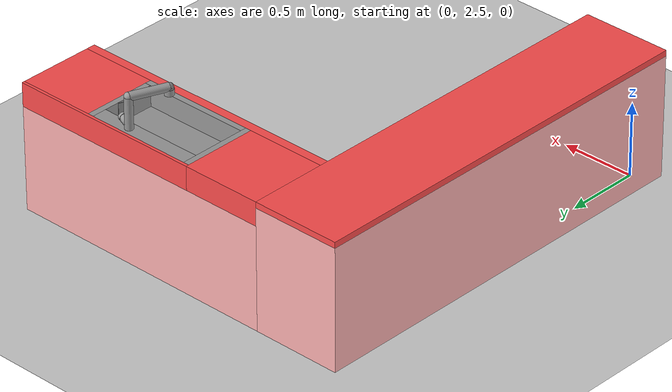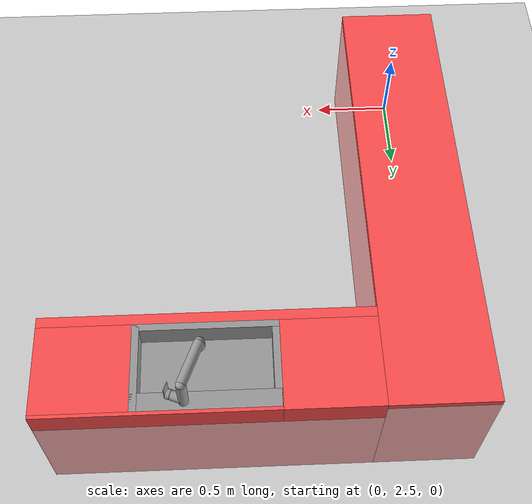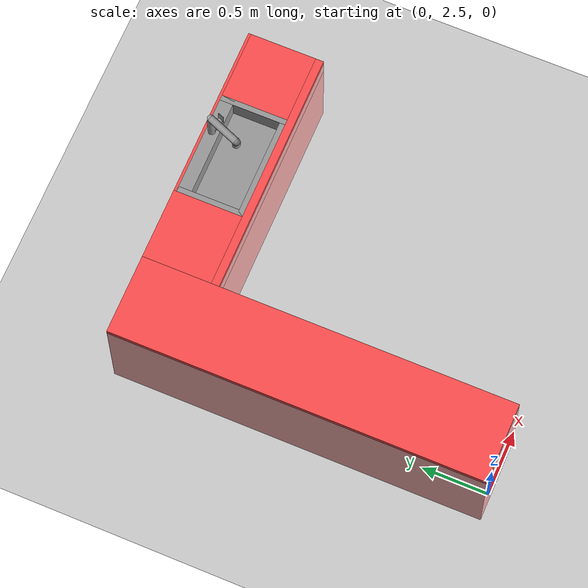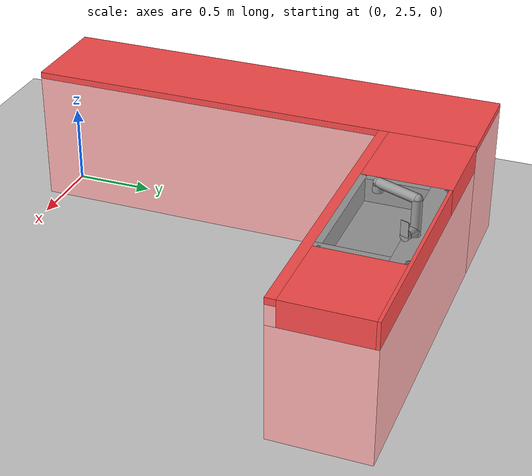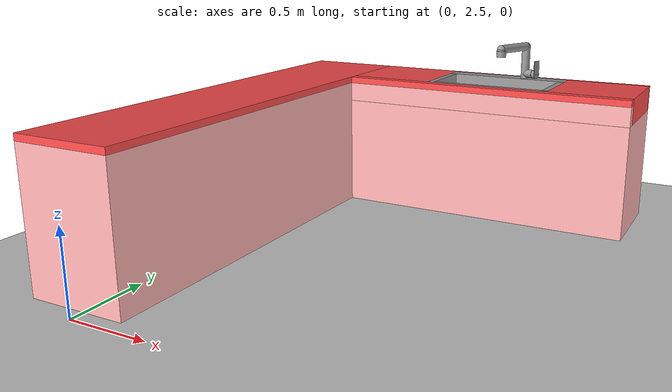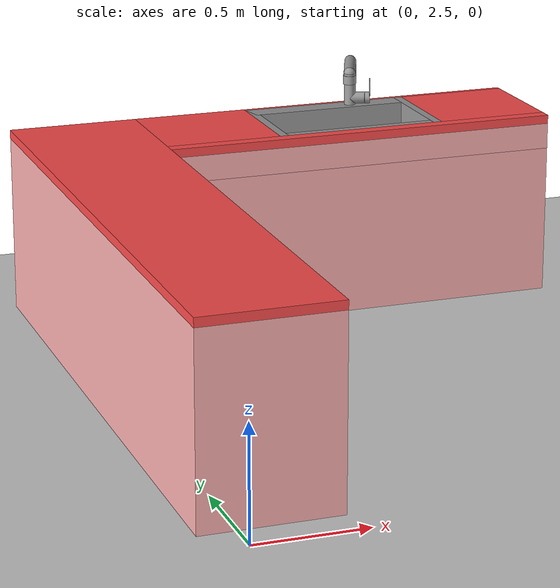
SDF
<sdf version="1.6">
 <world name="default">
  <model name="ground_plane">
   <static>1</static>
   <link name="link">
    <collision name="collision">
     <geometry><plane><normal>0 0 1</normal><size>100 100</size></plane></geometry>
     <surface><friction><ode><mu>100</mu><mu2>50</mu2></ode></friction></surface>
    </collision>
    <visual name="visual">
     <cast_shadows>0</cast_shadows>
     <geometry><plane><normal>0 0 1</normal><size>100 100</size></plane></geometry>
     <material>
      <script><uri>file://media/materials/scripts/gazebo.material</uri><name>Gazebo/Grey</name></script>
     </material>
    </visual>
   </link>
  </model>
  <model name="thesink_h_0">
   <link name="link_0_clone">
    <pose>-1.8174 7.06437 0.5 0 -0 0</pose>
    <visual name="visual">
     <geometry><box><size>1.86 0.58 0.7</size></box></geometry>
     <material>
      <lighting>1</lighting>
      <script><uri>file://media/materials/scripts/gazebo.material</uri><name>Gazebo/Grey</name></script>
      <ambient>0.3 0.3 0.3 1</ambient>
      <diffuse>1 0.7 0.7 1</diffuse>
      <specular>0.01 0.01 0.01 1</specular>
      <emissive>0 0 0 1</emissive>
      <shader type="vertex"><normal_map>__default__</normal_map></shader>
     </material>
    </visual>
    <collision name="collision">
     <geometry><box><size>1.86 0.58 0.7</size></box></geometry>
     <surface>
      <friction>
       <ode><mu>1</mu><mu2>1</mu2><fdir1>0 0 0</fdir1><slip1>0</slip1><slip2>0</slip2></ode>
       <torsional>
        <coefficient>1</coefficient>
        <patch_radius>0</patch_radius>
        <surface_radius>0</surface_radius>
        <use_patch_radius>1</use_patch_radius>
        <ode><slip>0</slip></ode>
       </torsional>
      </friction>
      <bounce><restitution_coefficient>0</restitution_coefficient><threshold>1e+06</threshold></bounce>
      <contact>
       <collide_without_contact>0</collide_without_contact>
       <collide_without_contact_bitmask>1</collide_without_contact_bitmask>
       <collide_bitmask>1</collide_bitmask>
       <ode>
        <soft_cfm>0</soft_cfm>
        <soft_erp>0.2</soft_erp>
        <kp>1e+13</kp>
        <kd>1</kd>
        <max_vel>0.01</max_vel>
        <min_depth>0</min_depth>
       </ode>
       <bullet>
        <split_impulse>1</split_impulse>
        <split_impulse_penetration_threshold>-0.01</split_impulse_penetration_threshold>
        <soft_cfm>0</soft_cfm>
        <soft_erp>0.2</soft_erp>
        <kp>1e+13</kp>
        <kd>1</kd>
       </bullet>
      </contact>
     </surface>
    </collision>
    <inertial>
     <inertia><ixx>1</ixx><ixy>0</ixy><ixz>0</ixz><iyy>1</iyy><iyz>0</iyz><izz>1</izz></inertia>
     <mass>1</mass>
    </inertial>
   </link>
   <link name="link_0_clone_clone">
    <pose>-1.8174 6.80437 0.91 0 -0 0</pose>
    <visual name="visual">
     <geometry><box><size>1.86 0.06 0.12</size></box></geometry>
     <material>
      <lighting>1</lighting>
      <script><uri>file://media/materials/scripts/gazebo.material</uri><name>Gazebo/Grey</name></script>
      <ambient>0.3 0.3 0.3 1</ambient>
      <diffuse>1 0.7 0.7 1</diffuse>
      <specular>0.01 0.01 0.01 1</specular>
      <emissive>0 0 0 1</emissive>
      <shader type="vertex"><normal_map>__default__</normal_map></shader>
     </material>
    </visual>
    <collision name="collision">
     <geometry><box><size>1.86 0.06 0.12</size></box></geometry>
     <surface>
      <friction>
       <ode><mu>1</mu><mu2>1</mu2><fdir1>0 0 0</fdir1><slip1>0</slip1><slip2>0</slip2></ode>
       <torsional>
        <coefficient>1</coefficient>
        <patch_radius>0</patch_radius>
        <surface_radius>0</surface_radius>
        <use_patch_radius>1</use_patch_radius>
        <ode><slip>0</slip></ode>
       </torsional>
      </friction>
      <bounce><restitution_coefficient>0</restitution_coefficient><threshold>1e+06</threshold></bounce>
      <contact>
       <collide_without_contact>0</collide_without_contact>
       <collide_without_contact_bitmask>1</collide_without_contact_bitmask>
       <collide_bitmask>1</collide_bitmask>
       <ode>
        <soft_cfm>0</soft_cfm>
        <soft_erp>0.2</soft_erp>
        <kp>1e+13</kp>
        <kd>1</kd>
        <max_vel>0.01</max_vel>
        <min_depth>0</min_depth>
       </ode>
       <bullet>
        <split_impulse>1</split_impulse>
        <split_impulse_penetration_threshold>-0.01</split_impulse_penetration_threshold>
        <soft_cfm>0</soft_cfm>
        <soft_erp>0.2</soft_erp>
        <kp>1e+13</kp>
        <kd>1</kd>
       </bullet>
      </contact>
     </surface>
    </collision>
    <inertial>
     <inertia><ixx>1</ixx><ixy>0</ixy><ixz>0</ixz><iyy>1</iyy><iyz>0</iyz><izz>1</izz></inertia>
     <mass>1</mass>
    </inertial>
   </link>
   <link name="link_0_clone_clone_0">
    <pose>-3.0474 5.95437 0.56 0 -0 0</pose>
    <visual name="visual">
     <geometry><box><size>0.6 2.8 0.82</size></box></geometry>
     <material>
      <lighting>1</lighting>
      <script><uri>file://media/materials/scripts/gazebo.material</uri><name>Gazebo/Grey</name></script>
      <ambient>0.3 0.3 0.3 1</ambient>
      <diffuse>1 0.7 0.7 1</diffuse>
      <specular>0.01 0.01 0.01 1</specular>
      <emissive>0 0 0 1</emissive>
      <shader type="vertex"><normal_map>__default__</normal_map></shader>
     </material>
    </visual>
    <collision name="collision">
     <geometry><box><size>0.6 2.8 0.82</size></box></geometry>
     <surface>
      <friction>
       <ode><mu>1</mu><mu2>1</mu2><fdir1>0 0 0</fdir1><slip1>0</slip1><slip2>0</slip2></ode>
       <torsional>
        <coefficient>1</coefficient>
        <patch_radius>0</patch_radius>
        <surface_radius>0</surface_radius>
        <use_patch_radius>1</use_patch_radius>
        <ode><slip>0</slip></ode>
       </torsional>
      </friction>
      <bounce><restitution_coefficient>0</restitution_coefficient><threshold>1e+06</threshold></bounce>
      <contact>
       <collide_without_contact>0</collide_without_contact>
       <collide_without_contact_bitmask>1</collide_without_contact_bitmask>
       <collide_bitmask>1</collide_bitmask>
       <ode>
        <soft_cfm>0</soft_cfm>
        <soft_erp>0.2</soft_erp>
        <kp>1e+13</kp>
        <kd>1</kd>
        <max_vel>0.01</max_vel>
        <min_depth>0</min_depth>
       </ode>
       <bullet>
        <split_impulse>1</split_impulse>
        <split_impulse_penetration_threshold>-0.01</split_impulse_penetration_threshold>
        <soft_cfm>0</soft_cfm>
        <soft_erp>0.2</soft_erp>
        <kp>1e+13</kp>
        <kd>1</kd>
       </bullet>
      </contact>
     </surface>
    </collision>
    <inertial>
     <inertia><ixx>1</ixx><ixy>0</ixy><ixz>0</ixz><iyy>1</iyy><iyz>0</iyz><izz>1</izz></inertia>
     <mass>1</mass>
    </inertial>
   </link>
   <link name="link_3_clone">
    <pose>-2.4774 7.09437 0.93 0 -0 0</pose>
    <visual name="visual">
     <geometry><box><size>0.54 0.52 0.16</size></box></geometry>
     <material>
      <lighting>1</lighting>
      <script><uri>file://media/materials/scripts/gazebo.material</uri><name>Gazebo/Grey</name></script>
      <ambient>1 0.3 0.3 1</ambient>
      <diffuse>0.7 0.7 0.7 1</diffuse>
      <specular>0.01 0.01 0.01 1</specular>
      <emissive>0 0 0 1</emissive>
      <shader type="vertex"><normal_map>__default__</normal_map></shader>
     </material>
    </visual>
    <collision name="collision">
     <geometry><box><size>0.54 0.52 0.16</size></box></geometry>
     <surface>
      <friction>
       <ode><mu>1</mu><mu2>1</mu2><fdir1>0 0 0</fdir1><slip1>0</slip1><slip2>0</slip2></ode>
       <torsional>
        <coefficient>1</coefficient>
        <patch_radius>0</patch_radius>
        <surface_radius>0</surface_radius>
        <use_patch_radius>1</use_patch_radius>
        <ode><slip>0</slip></ode>
       </torsional>
      </friction>
      <bounce><restitution_coefficient>0</restitution_coefficient><threshold>1e+06</threshold></bounce>
      <contact>
       <collide_without_contact>0</collide_without_contact>
       <collide_without_contact_bitmask>1</collide_without_contact_bitmask>
       <collide_bitmask>1</collide_bitmask>
       <ode>
        <soft_cfm>0</soft_cfm>
        <soft_erp>0.2</soft_erp>
        <kp>1e+13</kp>
        <kd>1</kd>
        <max_vel>0.01</max_vel>
        <min_depth>0</min_depth>
       </ode>
       <bullet>
        <split_impulse>1</split_impulse>
        <split_impulse_penetration_threshold>-0.01</split_impulse_penetration_threshold>
        <soft_cfm>0</soft_cfm>
        <soft_erp>0.2</soft_erp>
        <kp>1e+13</kp>
        <kd>1</kd>
       </bullet>
      </contact>
     </surface>
    </collision>
    <inertial>
     <inertia><ixx>1</ixx><ixy>0</ixy><ixz>0</ixz><iyy>1</iyy><iyz>0</iyz><izz>1</izz></inertia>
     <mass>1</mass>
    </inertial>
   </link>
   <link name="link_4_clone_0">
    <pose>-1.5474 7.34437 0.93 0 -0 0</pose>
    <visual name="visual">
     <geometry><box><size>1.32 0.02 0.16</size></box></geometry>
     <material>
      <lighting>1</lighting>
      <script><uri>file://media/materials/scripts/gazebo.material</uri><name>Gazebo/Grey</name></script>
      <ambient>1 0.3 0.3 1</ambient>
      <diffuse>0.7 0.7 0.7 1</diffuse>
      <specular>0.01 0.01 0.01 1</specular>
      <emissive>0 0 0 1</emissive>
      <shader type="vertex"><normal_map>__default__</normal_map></shader>
     </material>
    </visual>
    <collision name="collision">
     <geometry><box><size>1.32 0.02 0.16</size></box></geometry>
     <surface>
      <friction>
       <ode><mu>1</mu><mu2>1</mu2><fdir1>0 0 0</fdir1><slip1>0</slip1><slip2>0</slip2></ode>
       <torsional>
        <coefficient>1</coefficient>
        <patch_radius>0</patch_radius>
        <surface_radius>0</surface_radius>
        <use_patch_radius>1</use_patch_radius>
        <ode><slip>0</slip></ode>
       </torsional>
      </friction>
      <bounce><restitution_coefficient>0</restitution_coefficient><threshold>1e+06</threshold></bounce>
      <contact>
       <collide_without_contact>0</collide_without_contact>
       <collide_without_contact_bitmask>1</collide_without_contact_bitmask>
       <collide_bitmask>1</collide_bitmask>
       <ode>
        <soft_cfm>0</soft_cfm>
        <soft_erp>0.2</soft_erp>
        <kp>1e+13</kp>
        <kd>1</kd>
        <max_vel>0.01</max_vel>
        <min_depth>0</min_depth>
       </ode>
       <bullet>
        <split_impulse>1</split_impulse>
        <split_impulse_penetration_threshold>-0.01</split_impulse_penetration_threshold>
        <soft_cfm>0</soft_cfm>
        <soft_erp>0.2</soft_erp>
        <kp>1e+13</kp>
        <kd>1</kd>
       </bullet>
      </contact>
     </surface>
    </collision>
    <inertial>
     <inertia><ixx>1</ixx><ixy>0</ixy><ixz>0</ixz><iyy>1</iyy><iyz>0</iyz><izz>1</izz></inertia>
     <mass>1</mass>
    </inertial>
   </link>
   <link name="link_4_clone_clone">
    <pose>-1.8174 6.80437 0.99 0 -0 0</pose>
    <visual name="visual">
     <geometry><box><size>1.86 0.06 0.04</size></box></geometry>
     <material>
      <lighting>1</lighting>
      <script><uri>file://media/materials/scripts/gazebo.material</uri><name>Gazebo/Grey</name></script>
      <ambient>1 0.3 0.3 1</ambient>
      <diffuse>0.7 0.7 0.7 1</diffuse>
      <specular>0.01 0.01 0.01 1</specular>
      <emissive>0 0 0 1</emissive>
      <shader type="vertex"><normal_map>__default__</normal_map></shader>
     </material>
    </visual>
    <collision name="collision">
     <geometry><box><size>1.86 0.06 0.04</size></box></geometry>
     <surface>
      <friction>
       <ode><mu>1</mu><mu2>1</mu2><fdir1>0 0 0</fdir1><slip1>0</slip1><slip2>0</slip2></ode>
       <torsional>
        <coefficient>1</coefficient>
        <patch_radius>0</patch_radius>
        <surface_radius>0</surface_radius>
        <use_patch_radius>1</use_patch_radius>
        <ode><slip>0</slip></ode>
       </torsional>
      </friction>
      <bounce><restitution_coefficient>0</restitution_coefficient><threshold>1e+06</threshold></bounce>
      <contact>
       <collide_without_contact>0</collide_without_contact>
       <collide_without_contact_bitmask>1</collide_without_contact_bitmask>
       <collide_bitmask>1</collide_bitmask>
       <ode>
        <soft_cfm>0</soft_cfm>
        <soft_erp>0.2</soft_erp>
        <kp>1e+13</kp>
        <kd>1</kd>
        <max_vel>0.01</max_vel>
        <min_depth>0</min_depth>
       </ode>
       <bullet>
        <split_impulse>1</split_impulse>
        <split_impulse_penetration_threshold>-0.01</split_impulse_penetration_threshold>
        <soft_cfm>0</soft_cfm>
        <soft_erp>0.2</soft_erp>
        <kp>1e+13</kp>
        <kd>1</kd>
       </bullet>
      </contact>
     </surface>
    </collision>
    <inertial>
     <inertia><ixx>1</ixx><ixy>0</ixy><ixz>0</ixz><iyy>1</iyy><iyz>0</iyz><izz>1</izz></inertia>
     <mass>1</mass>
    </inertial>
   </link>
   <link name="link_4_clone_clone_clone">
    <pose>-3.0474 5.95437 0.99 0 -0 0</pose>
    <visual name="visual">
     <geometry><box><size>0.6 2.8 0.04</size></box></geometry>
     <material>
      <lighting>1</lighting>
      <script><uri>file://media/materials/scripts/gazebo.material</uri><name>Gazebo/Grey</name></script>
      <ambient>1 0.3 0.3 1</ambient>
      <diffuse>0.7 0.7 0.7 1</diffuse>
      <specular>0.01 0.01 0.01 1</specular>
      <emissive>0 0 0 1</emissive>
      <shader type="vertex"><normal_map>__default__</normal_map></shader>
     </material>
    </visual>
    <collision name="collision">
     <geometry><box><size>0.6 2.8 0.04</size></box></geometry>
     <surface>
      <friction>
       <ode><mu>1</mu><mu2>1</mu2><fdir1>0 0 0</fdir1><slip1>0</slip1><slip2>0</slip2></ode>
       <torsional>
        <coefficient>1</coefficient>
        <patch_radius>0</patch_radius>
        <surface_radius>0</surface_radius>
        <use_patch_radius>1</use_patch_radius>
        <ode><slip>0</slip></ode>
       </torsional>
      </friction>
      <bounce><restitution_coefficient>0</restitution_coefficient><threshold>1e+06</threshold></bounce>
      <contact>
       <collide_without_contact>0</collide_without_contact>
       <collide_without_contact_bitmask>1</collide_without_contact_bitmask>
       <collide_bitmask>1</collide_bitmask>
       <ode>
        <soft_cfm>0</soft_cfm>
        <soft_erp>0.2</soft_erp>
        <kp>1e+13</kp>
        <kd>1</kd>
        <max_vel>0.01</max_vel>
        <min_depth>0</min_depth>
       </ode>
       <bullet>
        <split_impulse>1</split_impulse>
        <split_impulse_penetration_threshold>-0.01</split_impulse_penetration_threshold>
        <soft_cfm>0</soft_cfm>
        <soft_erp>0.2</soft_erp>
        <kp>1e+13</kp>
        <kd>1</kd>
       </bullet>
      </contact>
     </surface>
    </collision>
    <inertial>
     <inertia><ixx>1</ixx><ixy>0</ixy><ixz>0</ixz><iyy>1</iyy><iyz>0</iyz><izz>1</izz></inertia>
     <mass>1</mass>
    </inertial>
   </link>
   <link name="link_5_clone_0">
    <pose>-2.1874 7.08437 0.93 0 -0 0</pose>
    <visual name="visual">
     <geometry><box><size>0.04 0.5 0.16</size></box></geometry>
     <material>
      <lighting>1</lighting>
      <script><uri>file://media/materials/scripts/gazebo.material</uri><name>Gazebo/Grey</name></script>
      <ambient>0.3 0.3 0.3 1</ambient>
      <diffuse>0.7 0.7 0.7 1</diffuse>
      <specular>0.01 0.01 0.01 1</specular>
      <emissive>0 0 0 1</emissive>
      <shader type="vertex"><normal_map>__default__</normal_map></shader>
     </material>
    </visual>
    <collision name="collision">
     <geometry><box><size>0.04 0.5 0.16</size></box></geometry>
     <surface>
      <friction>
       <ode><mu>1</mu><mu2>1</mu2><fdir1>0 0 0</fdir1><slip1>0</slip1><slip2>0</slip2></ode>
       <torsional>
        <coefficient>1</coefficient>
        <patch_radius>0</patch_radius>
        <surface_radius>0</surface_radius>
        <use_patch_radius>1</use_patch_radius>
        <ode><slip>0</slip></ode>
       </torsional>
      </friction>
      <bounce><restitution_coefficient>0</restitution_coefficient><threshold>1e+06</threshold></bounce>
      <contact>
       <collide_without_contact>0</collide_without_contact>
       <collide_without_contact_bitmask>1</collide_without_contact_bitmask>
       <collide_bitmask>1</collide_bitmask>
       <ode>
        <soft_cfm>0</soft_cfm>
        <soft_erp>0.2</soft_erp>
        <kp>1e+13</kp>
        <kd>1</kd>
        <max_vel>0.01</max_vel>
        <min_depth>0</min_depth>
       </ode>
       <bullet>
        <split_impulse>1</split_impulse>
        <split_impulse_penetration_threshold>-0.01</split_impulse_penetration_threshold>
        <soft_cfm>0</soft_cfm>
        <soft_erp>0.2</soft_erp>
        <kp>1e+13</kp>
        <kd>1</kd>
       </bullet>
      </contact>
     </surface>
    </collision>
    <inertial>
     <inertia><ixx>1</ixx><ixy>0</ixy><ixz>0</ixz><iyy>1</iyy><iyz>0</iyz><izz>1</izz></inertia>
     <mass>1</mass>
    </inertial>
   </link>
   <link name="link_5_clone_clone">
    <pose>-1.4274 7.08437 0.93 0 -0 0</pose>
    <visual name="visual">
     <geometry><box><size>0.04 0.5 0.16</size></box></geometry>
     <material>
      <lighting>1</lighting>
      <script><uri>file://media/materials/scripts/gazebo.material</uri><name>Gazebo/Grey</name></script>
      <ambient>0.3 0.3 0.3 1</ambient>
      <diffuse>0.7 0.7 0.7 1</diffuse>
      <specular>0.01 0.01 0.01 1</specular>
      <emissive>0 0 0 1</emissive>
      <shader type="vertex"><normal_map>__default__</normal_map></shader>
     </material>
    </visual>
    <collision name="collision">
     <geometry><box><size>0.04 0.5 0.16</size></box></geometry>
     <surface>
      <friction>
       <ode><mu>1</mu><mu2>1</mu2><fdir1>0 0 0</fdir1><slip1>0</slip1><slip2>0</slip2></ode>
       <torsional>
        <coefficient>1</coefficient>
        <patch_radius>0</patch_radius>
        <surface_radius>0</surface_radius>
        <use_patch_radius>1</use_patch_radius>
        <ode><slip>0</slip></ode>
       </torsional>
      </friction>
      <bounce><restitution_coefficient>0</restitution_coefficient><threshold>1e+06</threshold></bounce>
      <contact>
       <collide_without_contact>0</collide_without_contact>
       <collide_without_contact_bitmask>1</collide_without_contact_bitmask>
       <collide_bitmask>1</collide_bitmask>
       <ode>
        <soft_cfm>0</soft_cfm>
        <soft_erp>0.2</soft_erp>
        <kp>1e+13</kp>
        <kd>1</kd>
        <max_vel>0.01</max_vel>
        <min_depth>0</min_depth>
       </ode>
       <bullet>
        <split_impulse>1</split_impulse>
        <split_impulse_penetration_threshold>-0.01</split_impulse_penetration_threshold>
        <soft_cfm>0</soft_cfm>
        <soft_erp>0.2</soft_erp>
        <kp>1e+13</kp>
        <kd>1</kd>
       </bullet>
      </contact>
     </surface>
    </collision>
    <inertial>
     <inertia><ixx>1</ixx><ixy>0</ixy><ixz>0</ixz><iyy>1</iyy><iyz>0</iyz><izz>1</izz></inertia>
     <mass>1</mass>
    </inertial>
   </link>
   <link name="link_6_clone">
    <pose>-1.8074 7.08437 0.86 0 -0 0</pose>
    <visual name="visual">
     <geometry><box><size>0.8 0.5 0.02</size></box></geometry>
     <material>
      <lighting>1</lighting>
      <script><uri>file://media/materials/scripts/gazebo.material</uri><name>Gazebo/Grey</name></script>
      <ambient>0.3 0.3 0.3 1</ambient>
      <diffuse>0.7 0.7 0.7 1</diffuse>
      <specular>0.01 0.01 0.01 1</specular>
      <emissive>0 0 0 1</emissive>
      <shader type="vertex"><normal_map>__default__</normal_map></shader>
     </material>
    </visual>
    <collision name="collision">
     <geometry><box><size>0.8 0.5 0.02</size></box></geometry>
     <surface>
      <friction>
       <ode><mu>1</mu><mu2>1</mu2><fdir1>0 0 0</fdir1><slip1>0</slip1><slip2>0</slip2></ode>
       <torsional>
        <coefficient>1</coefficient>
        <patch_radius>0</patch_radius>
        <surface_radius>0</surface_radius>
        <use_patch_radius>1</use_patch_radius>
        <ode><slip>0</slip></ode>
       </torsional>
      </friction>
      <bounce><restitution_coefficient>0</restitution_coefficient><threshold>1e+06</threshold></bounce>
      <contact>
       <collide_without_contact>0</collide_without_contact>
       <collide_without_contact_bitmask>1</collide_without_contact_bitmask>
       <collide_bitmask>1</collide_bitmask>
       <ode>
        <soft_cfm>0</soft_cfm>
        <soft_erp>0.2</soft_erp>
        <kp>1e+13</kp>
        <kd>1</kd>
        <max_vel>0.01</max_vel>
        <min_depth>0</min_depth>
       </ode>
       <bullet>
        <split_impulse>1</split_impulse>
        <split_impulse_penetration_threshold>-0.01</split_impulse_penetration_threshold>
        <soft_cfm>0</soft_cfm>
        <soft_erp>0.2</soft_erp>
        <kp>1e+13</kp>
        <kd>1</kd>
       </bullet>
      </contact>
     </surface>
    </collision>
    <inertial>
     <inertia><ixx>1</ixx><ixy>0</ixy><ixz>0</ixz><iyy>1</iyy><iyz>0</iyz><izz>1</izz></inertia>
     <mass>1</mass>
    </inertial>
   </link>
   <link name="link_7_clone_0">
    <pose>-1.8074 7.28437 0.93 0 -0 0</pose>
    <visual name="visual">
     <geometry><box><size>0.8 0.1 0.16</size></box></geometry>
     <material>
      <lighting>1</lighting>
      <script><uri>file://media/materials/scripts/gazebo.material</uri><name>Gazebo/Grey</name></script>
      <ambient>0.3 0.3 0.3 1</ambient>
      <diffuse>0.7 0.7 0.7 1</diffuse>
      <specular>0.01 0.01 0.01 1</specular>
      <emissive>0 0 0 1</emissive>
      <shader type="vertex"><normal_map>__default__</normal_map></shader>
     </material>
    </visual>
    <collision name="collision">
     <geometry><box><size>0.8 0.1 0.16</size></box></geometry>
     <surface>
      <friction>
       <ode><mu>1</mu><mu2>1</mu2><fdir1>0 0 0</fdir1><slip1>0</slip1><slip2>0</slip2></ode>
       <torsional>
        <coefficient>1</coefficient>
        <patch_radius>0</patch_radius>
        <surface_radius>0</surface_radius>
        <use_patch_radius>1</use_patch_radius>
        <ode><slip>0</slip></ode>
       </torsional>
      </friction>
      <bounce><restitution_coefficient>0</restitution_coefficient><threshold>1e+06</threshold></bounce>
      <contact>
       <collide_without_contact>0</collide_without_contact>
       <collide_without_contact_bitmask>1</collide_without_contact_bitmask>
       <collide_bitmask>1</collide_bitmask>
       <ode>
        <soft_cfm>0</soft_cfm>
        <soft_erp>0.2</soft_erp>
        <kp>1e+13</kp>
        <kd>1</kd>
        <max_vel>0.01</max_vel>
        <min_depth>0</min_depth>
       </ode>
       <bullet>
        <split_impulse>1</split_impulse>
        <split_impulse_penetration_threshold>-0.01</split_impulse_penetration_threshold>
        <soft_cfm>0</soft_cfm>
        <soft_erp>0.2</soft_erp>
        <kp>1e+13</kp>
        <kd>1</kd>
       </bullet>
      </contact>
     </surface>
    </collision>
    <inertial>
     <inertia><ixx>1</ixx><ixy>0</ixy><ixz>0</ixz><iyy>1</iyy><iyz>0</iyz><izz>1</izz></inertia>
     <mass>1</mass>
    </inertial>
   </link>
   <link name="link_7_clone_clone">
    <pose>-1.8074 6.85437 0.93 0 -0 0</pose>
    <visual name="visual">
     <geometry><box><size>0.8 0.04 0.16</size></box></geometry>
     <material>
      <lighting>1</lighting>
      <script><uri>file://media/materials/scripts/gazebo.material</uri><name>Gazebo/Grey</name></script>
      <ambient>0.3 0.3 0.3 1</ambient>
      <diffuse>0.7 0.7 0.7 1</diffuse>
      <specular>0.01 0.01 0.01 1</specular>
      <emissive>0 0 0 1</emissive>
      <shader type="vertex"><normal_map>__default__</normal_map></shader>
     </material>
    </visual>
    <collision name="collision">
     <geometry><box><size>0.8 0.04 0.16</size></box></geometry>
     <surface>
      <friction>
       <ode><mu>1</mu><mu2>1</mu2><fdir1>0 0 0</fdir1><slip1>0</slip1><slip2>0</slip2></ode>
       <torsional>
        <coefficient>1</coefficient>
        <patch_radius>0</patch_radius>
        <surface_radius>0</surface_radius>
        <use_patch_radius>1</use_patch_radius>
        <ode><slip>0</slip></ode>
       </torsional>
      </friction>
      <bounce><restitution_coefficient>0</restitution_coefficient><threshold>1e+06</threshold></bounce>
      <contact>
       <collide_without_contact>0</collide_without_contact>
       <collide_without_contact_bitmask>1</collide_without_contact_bitmask>
       <collide_bitmask>1</collide_bitmask>
       <ode>
        <soft_cfm>0</soft_cfm>
        <soft_erp>0.2</soft_erp>
        <kp>1e+13</kp>
        <kd>1</kd>
        <max_vel>0.01</max_vel>
        <min_depth>0</min_depth>
       </ode>
       <bullet>
        <split_impulse>1</split_impulse>
        <split_impulse_penetration_threshold>-0.01</split_impulse_penetration_threshold>
        <soft_cfm>0</soft_cfm>
        <soft_erp>0.2</soft_erp>
        <kp>1e+13</kp>
        <kd>1</kd>
       </bullet>
      </contact>
     </surface>
    </collision>
    <inertial>
     <inertia><ixx>1</ixx><ixy>0</ixy><ixz>0</ixz><iyy>1</iyy><iyz>0</iyz><izz>1</izz></inertia>
     <mass>1</mass>
    </inertial>
   </link>
   <link name="link_8_clone">
    <pose>-1.1474 7.08437 0.93 0 -0 0</pose>
    <visual name="visual">
     <geometry><box><size>0.52 0.5 0.16</size></box></geometry>
     <material>
      <lighting>1</lighting>
      <script><uri>file://media/materials/scripts/gazebo.material</uri><name>Gazebo/Grey</name></script>
      <ambient>1 0.3 0.3 1</ambient>
      <diffuse>0.7 0.7 0.7 1</diffuse>
      <specular>0.01 0.01 0.01 1</specular>
      <emissive>0 0 0 1</emissive>
      <shader type="vertex"><normal_map>__default__</normal_map></shader>
     </material>
    </visual>
    <collision name="collision">
     <geometry><box><size>0.52 0.5 0.16</size></box></geometry>
     <surface>
      <friction>
       <ode><mu>1</mu><mu2>1</mu2><fdir1>0 0 0</fdir1><slip1>0</slip1><slip2>0</slip2></ode>
       <torsional>
        <coefficient>1</coefficient>
        <patch_radius>0</patch_radius>
        <surface_radius>0</surface_radius>
        <use_patch_radius>1</use_patch_radius>
        <ode><slip>0</slip></ode>
       </torsional>
      </friction>
      <bounce><restitution_coefficient>0</restitution_coefficient><threshold>1e+06</threshold></bounce>
      <contact>
       <collide_without_contact>0</collide_without_contact>
       <collide_without_contact_bitmask>1</collide_without_contact_bitmask>
       <collide_bitmask>1</collide_bitmask>
       <ode>
        <soft_cfm>0</soft_cfm>
        <soft_erp>0.2</soft_erp>
        <kp>1e+13</kp>
        <kd>1</kd>
        <max_vel>0.01</max_vel>
        <min_depth>0</min_depth>
       </ode>
       <bullet>
        <split_impulse>1</split_impulse>
        <split_impulse_penetration_threshold>-0.01</split_impulse_penetration_threshold>
        <soft_cfm>0</soft_cfm>
        <soft_erp>0.2</soft_erp>
        <kp>1e+13</kp>
        <kd>1</kd>
       </bullet>
      </contact>
     </surface>
    </collision>
    <inertial>
     <inertia><ixx>1</ixx><ixy>0</ixy><ixz>0</ixz><iyy>1</iyy><iyz>0</iyz><izz>1</izz></inertia>
     <mass>1</mass>
    </inertial>
   </link>
   <model name="faucet_3">
    <link name="link_0">
     <pose>-4.16773 1.01211 0.450461 0 -0 0</pose>
     <visual name="visual">
      <geometry><cylinder><radius>0.0275</radius><length>0.22</length></cylinder></geometry>
      <material>
       <lighting>1</lighting>
       <script><uri>file://media/materials/scripts/gazebo.material</uri><name>Gazebo/Grey</name></script>
       <ambient>0.3 0.3 0.3 1</ambient>
       <diffuse>0.7 0.7 0.7 1</diffuse>
       <specular>0.01 0.01 0.01 1</specular>
       <emissive>0 0 0 1</emissive>
       <shader type="vertex"><normal_map>__default__</normal_map></shader>
      </material>
     </visual>
     <collision name="collision">
      <geometry><cylinder><radius>0.0275</radius><length>0.22</length></cylinder></geometry>
      <surface>
       <friction>
        <ode><mu>1</mu><mu2>1</mu2><fdir1>0 0 0</fdir1><slip1>0</slip1><slip2>0</slip2></ode>
        <torsional>
         <coefficient>1</coefficient>
         <patch_radius>0</patch_radius>
         <surface_radius>0</surface_radius>
         <use_patch_radius>1</use_patch_radius>
         <ode><slip>0</slip></ode>
        </torsional>
       </friction>
       <bounce><restitution_coefficient>0</restitution_coefficient><threshold>1e+06</threshold></bounce>
       <contact>
        <collide_without_contact>0</collide_without_contact>
        <collide_without_contact_bitmask>1</collide_without_contact_bitmask>
        <collide_bitmask>1</collide_bitmask>
        <ode>
         <soft_cfm>0</soft_cfm>
         <soft_erp>0.2</soft_erp>
         <kp>1e+13</kp>
         <kd>1</kd>
         <max_vel>0.01</max_vel>
         <min_depth>0</min_depth>
        </ode>
        <bullet>
         <split_impulse>1</split_impulse>
         <split_impulse_penetration_threshold>-0.01</split_impulse_penetration_threshold>
         <soft_cfm>0</soft_cfm>
         <soft_erp>0.2</soft_erp>
         <kp>1e+13</kp>
         <kd>1</kd>
        </bullet>
       </contact>
      </surface>
     </collision>
     <inertial>
      <inertia><ixx>1</ixx><ixy>0</ixy><ixz>0</ixz><iyy>1</iyy><iyz>0</iyz><izz>1</izz></inertia>
      <mass>1</mass>
     </inertial>
    </link>
    <link name="link_0_clone">
     <pose>-4.29273 1.01211 0.56046 0 1.5707 0</pose>
     <visual name="visual">
      <geometry><cylinder><radius>0.0275</radius><length>0.25</length></cylinder></geometry>
      <material>
       <lighting>1</lighting>
       <script><uri>file://media/materials/scripts/gazebo.material</uri><name>Gazebo/Grey</name></script>
       <ambient>0.3 0.3 0.3 1</ambient>
       <diffuse>0.7 0.7 0.7 1</diffuse>
       <specular>0.01 0.01 0.01 1</specular>
       <emissive>0 0 0 1</emissive>
       <shader type="vertex"><normal_map>__default__</normal_map></shader>
      </material>
     </visual>
     <collision name="collision">
      <geometry><cylinder><radius>0.0275</radius><length>0.25</length></cylinder></geometry>
      <surface>
       <friction>
        <ode><mu>1</mu><mu2>1</mu2><fdir1>0 0 0</fdir1><slip1>0</slip1><slip2>0</slip2></ode>
        <torsional>
         <coefficient>1</coefficient>
         <patch_radius>0</patch_radius>
         <surface_radius>0</surface_radius>
         <use_patch_radius>1</use_patch_radius>
         <ode><slip>0</slip></ode>
        </torsional>
       </friction>
       <bounce><restitution_coefficient>0</restitution_coefficient><threshold>1e+06</threshold></bounce>
       <contact>
        <collide_without_contact>0</collide_without_contact>
        <collide_without_contact_bitmask>1</collide_without_contact_bitmask>
        <collide_bitmask>1</collide_bitmask>
        <ode>
         <soft_cfm>0</soft_cfm>
         <soft_erp>0.2</soft_erp>
         <kp>1e+13</kp>
         <kd>1</kd>
         <max_vel>0.01</max_vel>
         <min_depth>0</min_depth>
        </ode>
        <bullet>
         <split_impulse>1</split_impulse>
         <split_impulse_penetration_threshold>-0.01</split_impulse_penetration_threshold>
         <soft_cfm>0</soft_cfm>
         <soft_erp>0.2</soft_erp>
         <kp>1e+13</kp>
         <kd>1</kd>
        </bullet>
       </contact>
      </surface>
     </collision>
     <inertial>
      <inertia><ixx>1</ixx><ixy>0</ixy><ixz>0</ixz><iyy>1</iyy><iyz>0</iyz><izz>1</izz></inertia>
      <mass>1</mass>
     </inertial>
    </link>
    <link name="link_1">
     <pose>-4.16773 1.01211 0.56046 0 -0 0</pose>
     <visual name="visual">
      <geometry><sphere><radius>0.0275</radius></sphere></geometry>
      <material>
       <lighting>1</lighting>
       <script><uri>file://media/materials/scripts/gazebo.material</uri><name>Gazebo/Grey</name></script>
       <ambient>0.3 0.3 0.3 1</ambient>
       <diffuse>0.7 0.7 0.7 1</diffuse>
       <specular>0.01 0.01 0.01 1</specular>
       <emissive>0 0 0 1</emissive>
       <shader type="vertex"><normal_map>__default__</normal_map></shader>
      </material>
     </visual>
     <collision name="collision">
      <geometry><sphere><radius>0.0275</radius></sphere></geometry>
      <surface>
       <friction>
        <ode><mu>1</mu><mu2>1</mu2><fdir1>0 0 0</fdir1><slip1>0</slip1><slip2>0</slip2></ode>
        <torsional>
         <coefficient>1</coefficient>
         <patch_radius>0</patch_radius>
         <surface_radius>0</surface_radius>
         <use_patch_radius>1</use_patch_radius>
         <ode><slip>0</slip></ode>
        </torsional>
       </friction>
       <bounce><restitution_coefficient>0</restitution_coefficient><threshold>1e+06</threshold></bounce>
       <contact>
        <collide_without_contact>0</collide_without_contact>
        <collide_without_contact_bitmask>1</collide_without_contact_bitmask>
        <collide_bitmask>1</collide_bitmask>
        <ode>
         <soft_cfm>0</soft_cfm>
         <soft_erp>0.2</soft_erp>
         <kp>1e+13</kp>
         <kd>1</kd>
         <max_vel>0.01</max_vel>
         <min_depth>0</min_depth>
        </ode>
        <bullet>
         <split_impulse>1</split_impulse>
         <split_impulse_penetration_threshold>-0.01</split_impulse_penetration_threshold>
         <soft_cfm>0</soft_cfm>
         <soft_erp>0.2</soft_erp>
         <kp>1e+13</kp>
         <kd>1</kd>
        </bullet>
       </contact>
      </surface>
     </collision>
     <inertial>
      <inertia><ixx>1</ixx><ixy>0</ixy><ixz>0</ixz><iyy>1</iyy><iyz>0</iyz><izz>1</izz></inertia>
      <mass>1</mass>
     </inertial>
    </link>
    <link name="link_1_clone">
     <pose>-4.41773 1.01211 0.56046 0 -0 0</pose>
     <visual name="visual">
      <geometry><sphere><radius>0.0275</radius></sphere></geometry>
      <material>
       <lighting>1</lighting>
       <script><uri>file://media/materials/scripts/gazebo.material</uri><name>Gazebo/Grey</name></script>
       <ambient>0.3 0.3 0.3 1</ambient>
       <diffuse>0.7 0.7 0.7 1</diffuse>
       <specular>0.01 0.01 0.01 1</specular>
       <emissive>0 0 0 1</emissive>
       <shader type="vertex"><normal_map>__default__</normal_map></shader>
      </material>
     </visual>
     <collision name="collision">
      <geometry><sphere><radius>0.0275</radius></sphere></geometry>
      <surface>
       <friction>
        <ode><mu>1</mu><mu2>1</mu2><fdir1>0 0 0</fdir1><slip1>0</slip1><slip2>0</slip2></ode>
        <torsional>
         <coefficient>1</coefficient>
         <patch_radius>0</patch_radius>
         <surface_radius>0</surface_radius>
         <use_patch_radius>1</use_patch_radius>
         <ode><slip>0</slip></ode>
        </torsional>
       </friction>
       <bounce><restitution_coefficient>0</restitution_coefficient><threshold>1e+06</threshold></bounce>
       <contact>
        <collide_without_contact>0</collide_without_contact>
        <collide_without_contact_bitmask>1</collide_without_contact_bitmask>
        <collide_bitmask>1</collide_bitmask>
        <ode>
         <soft_cfm>0</soft_cfm>
         <soft_erp>0.2</soft_erp>
         <kp>1e+13</kp>
         <kd>1</kd>
         <max_vel>0.01</max_vel>
         <min_depth>0</min_depth>
        </ode>
        <bullet>
         <split_impulse>1</split_impulse>
         <split_impulse_penetration_threshold>-0.01</split_impulse_penetration_threshold>
         <soft_cfm>0</soft_cfm>
         <soft_erp>0.2</soft_erp>
         <kp>1e+13</kp>
         <kd>1</kd>
        </bullet>
       </contact>
      </surface>
     </collision>
     <inertial>
      <inertia><ixx>1</ixx><ixy>0</ixy><ixz>0</ixz><iyy>1</iyy><iyz>0</iyz><izz>1</izz></inertia>
      <mass>1</mass>
     </inertial>
    </link>
    <link name="link_3">
     <pose>-4.41773 1.01211 0.55546 0 -0 0</pose>
     <visual name="visual">
      <geometry><cylinder><radius>0.0275</radius><length>0.01</length></cylinder></geometry>
      <material>
       <lighting>1</lighting>
       <script><uri>file://media/materials/scripts/gazebo.material</uri><name>Gazebo/Grey</name></script>
       <ambient>0.3 0.3 0.3 1</ambient>
       <diffuse>0.7 0.7 0.7 1</diffuse>
       <specular>0.01 0.01 0.01 1</specular>
       <emissive>0 0 0 1</emissive>
       <shader type="vertex"><normal_map>__default__</normal_map></shader>
      </material>
     </visual>
     <collision name="collision">
      <geometry><cylinder><radius>0.0275</radius><length>0.01</length></cylinder></geometry>
      <surface>
       <friction>
        <ode><mu>1</mu><mu2>1</mu2><fdir1>0 0 0</fdir1><slip1>0</slip1><slip2>0</slip2></ode>
        <torsional>
         <coefficient>1</coefficient>
         <patch_radius>0</patch_radius>
         <surface_radius>0</surface_radius>
         <use_patch_radius>1</use_patch_radius>
         <ode><slip>0</slip></ode>
        </torsional>
       </friction>
       <bounce><restitution_coefficient>0</restitution_coefficient><threshold>1e+06</threshold></bounce>
       <contact>
        <collide_without_contact>0</collide_without_contact>
        <collide_without_contact_bitmask>1</collide_without_contact_bitmask>
        <collide_bitmask>1</collide_bitmask>
        <ode>
         <soft_cfm>0</soft_cfm>
         <soft_erp>0.2</soft_erp>
         <kp>1e+13</kp>
         <kd>1</kd>
         <max_vel>0.01</max_vel>
         <min_depth>0</min_depth>
        </ode>
        <bullet>
         <split_impulse>1</split_impulse>
         <split_impulse_penetration_threshold>-0.01</split_impulse_penetration_threshold>
         <soft_cfm>0</soft_cfm>
         <soft_erp>0.2</soft_erp>
         <kp>1e+13</kp>
         <kd>1</kd>
        </bullet>
       </contact>
      </surface>
     </collision>
     <inertial>
      <inertia><ixx>1</ixx><ixy>0</ixy><ixz>0</ixz><iyy>1</iyy><iyz>0</iyz><izz>1</izz></inertia>
      <mass>1</mass>
     </inertial>
    </link>
    <link name="link_4">
     <pose>-4.41773 1.01211 0.53046 0 -0 0</pose>
     <visual name="visual">
      <geometry><cylinder><radius>0.03</radius><length>0.04</length></cylinder></geometry>
      <material>
       <lighting>1</lighting>
       <script><uri>file://media/materials/scripts/gazebo.material</uri><name>Gazebo/Grey</name></script>
       <ambient>0.3 0.3 0.3 1</ambient>
       <diffuse>0.7 0.7 0.7 1</diffuse>
       <specular>0.01 0.01 0.01 1</specular>
       <emissive>0 0 0 1</emissive>
       <shader type="vertex"><normal_map>__default__</normal_map></shader>
      </material>
     </visual>
     <collision name="collision">
      <geometry><cylinder><radius>0.03</radius><length>0.04</length></cylinder></geometry>
      <surface>
       <friction>
        <ode><mu>1</mu><mu2>1</mu2><fdir1>0 0 0</fdir1><slip1>0</slip1><slip2>0</slip2></ode>
        <torsional>
         <coefficient>1</coefficient>
         <patch_radius>0</patch_radius>
         <surface_radius>0</surface_radius>
         <use_patch_radius>1</use_patch_radius>
         <ode><slip>0</slip></ode>
        </torsional>
       </friction>
       <bounce><restitution_coefficient>0</restitution_coefficient><threshold>1e+06</threshold></bounce>
       <contact>
        <collide_without_contact>0</collide_without_contact>
        <collide_without_contact_bitmask>1</collide_without_contact_bitmask>
        <collide_bitmask>1</collide_bitmask>
        <ode>
         <soft_cfm>0</soft_cfm>
         <soft_erp>0.2</soft_erp>
         <kp>1e+13</kp>
         <kd>1</kd>
         <max_vel>0.01</max_vel>
         <min_depth>0</min_depth>
        </ode>
        <bullet>
         <split_impulse>1</split_impulse>
         <split_impulse_penetration_threshold>-0.01</split_impulse_penetration_threshold>
         <soft_cfm>0</soft_cfm>
         <soft_erp>0.2</soft_erp>
         <kp>1e+13</kp>
         <kd>1</kd>
        </bullet>
       </contact>
      </surface>
     </collision>
     <inertial>
      <inertia><ixx>1</ixx><ixy>0</ixy><ixz>0</ixz><iyy>1</iyy><iyz>0</iyz><izz>1</izz></inertia>
      <mass>1</mass>
     </inertial>
    </link>
    <link name="link_5">
     <pose>-4.16773 0.978357 0.381368 1.5707 -0 0</pose>
     <visual name="visual">
      <geometry><cylinder><radius>0.0275</radius><length>0.0675</length></cylinder></geometry>
      <material>
       <lighting>1</lighting>
       <script><uri>file://media/materials/scripts/gazebo.material</uri><name>Gazebo/Grey</name></script>
       <ambient>0.3 0.3 0.3 1</ambient>
       <diffuse>0.7 0.7 0.7 1</diffuse>
       <specular>0.01 0.01 0.01 1</specular>
       <emissive>0 0 0 1</emissive>
       <shader type="vertex"><normal_map>__default__</normal_map></shader>
      </material>
     </visual>
     <collision name="collision">
      <geometry><cylinder><radius>0.0275</radius><length>0.0675</length></cylinder></geometry>
      <surface>
       <friction>
        <ode><mu>1</mu><mu2>1</mu2><fdir1>0 0 0</fdir1><slip1>0</slip1><slip2>0</slip2></ode>
        <torsional>
         <coefficient>1</coefficient>
         <patch_radius>0</patch_radius>
         <surface_radius>0</surface_radius>
         <use_patch_radius>1</use_patch_radius>
         <ode><slip>0</slip></ode>
        </torsional>
       </friction>
       <bounce><restitution_coefficient>0</restitution_coefficient><threshold>1e+06</threshold></bounce>
       <contact>
        <collide_without_contact>0</collide_without_contact>
        <collide_without_contact_bitmask>1</collide_without_contact_bitmask>
        <collide_bitmask>1</collide_bitmask>
        <ode>
         <soft_cfm>0</soft_cfm>
         <soft_erp>0.2</soft_erp>
         <kp>1e+13</kp>
         <kd>1</kd>
         <max_vel>0.01</max_vel>
         <min_depth>0</min_depth>
        </ode>
        <bullet>
         <split_impulse>1</split_impulse>
         <split_impulse_penetration_threshold>-0.01</split_impulse_penetration_threshold>
         <soft_cfm>0</soft_cfm>
         <soft_erp>0.2</soft_erp>
         <kp>1e+13</kp>
         <kd>1</kd>
        </bullet>
       </contact>
      </surface>
     </collision>
     <inertial>
      <inertia><ixx>1</ixx><ixy>0</ixy><ixz>0</ixz><iyy>1</iyy><iyz>0</iyz><izz>1</izz></inertia>
      <mass>1</mass>
     </inertial>
    </link>
    <link name="link_5_clone">
     <pose>-4.16773 0.929098 0.381368 1.5707 -0 0</pose>
     <visual name="visual">
      <geometry><cylinder><radius>0.0275</radius><length>0.025</length></cylinder></geometry>
      <material>
       <lighting>1</lighting>
       <script><uri>file://media/materials/scripts/gazebo.material</uri><name>Gazebo/Grey</name></script>
       <ambient>0.3 0.3 0.3 1</ambient>
       <diffuse>0.7 0.7 0.7 1</diffuse>
       <specular>0.01 0.01 0.01 1</specular>
       <emissive>0 0 0 1</emissive>
       <shader type="vertex"><normal_map>__default__</normal_map></shader>
      </material>
     </visual>
     <collision name="collision">
      <geometry><cylinder><radius>0.0275</radius><length>0.025</length></cylinder></geometry>
      <surface>
       <friction>
        <ode><mu>1</mu><mu2>1</mu2><fdir1>0 0 0</fdir1><slip1>0</slip1><slip2>0</slip2></ode>
        <torsional>
         <coefficient>1</coefficient>
         <patch_radius>0</patch_radius>
         <surface_radius>0</surface_radius>
         <use_patch_radius>1</use_patch_radius>
         <ode><slip>0</slip></ode>
        </torsional>
       </friction>
       <bounce><restitution_coefficient>0</restitution_coefficient><threshold>1e+06</threshold></bounce>
       <contact>
        <collide_without_contact>0</collide_without_contact>
        <collide_without_contact_bitmask>1</collide_without_contact_bitmask>
        <collide_bitmask>1</collide_bitmask>
        <ode>
         <soft_cfm>0</soft_cfm>
         <soft_erp>0.2</soft_erp>
         <kp>1e+13</kp>
         <kd>1</kd>
         <max_vel>0.01</max_vel>
         <min_depth>0</min_depth>
        </ode>
        <bullet>
         <split_impulse>1</split_impulse>
         <split_impulse_penetration_threshold>-0.01</split_impulse_penetration_threshold>
         <soft_cfm>0</soft_cfm>
         <soft_erp>0.2</soft_erp>
         <kp>1e+13</kp>
         <kd>1</kd>
        </bullet>
       </contact>
      </surface>
     </collision>
     <inertial>
      <inertia><ixx>1</ixx><ixy>0</ixy><ixz>0</ixz><iyy>1</iyy><iyz>0</iyz><izz>1</izz></inertia>
      <mass>1</mass>
     </inertial>
    </link>
    <link name="link_6">
     <pose>-4.16773 0.943103 0.381368 1.5707 -0 0</pose>
     <visual name="visual">
      <geometry><cylinder><radius>0.015</radius><length>0.002</length></cylinder></geometry>
      <material>
       <lighting>1</lighting>
       <script><uri>file://media/materials/scripts/gazebo.material</uri><name>Gazebo/Grey</name></script>
       <ambient>0.3 0.3 0.3 1</ambient>
       <diffuse>0.7 0.7 0.7 1</diffuse>
       <specular>0.01 0.01 0.01 1</specular>
       <emissive>0 0 0 1</emissive>
       <shader type="vertex"><normal_map>__default__</normal_map></shader>
      </material>
     </visual>
     <collision name="collision">
      <geometry><cylinder><radius>0.015</radius><length>0.003</length></cylinder></geometry>
      <surface>
       <friction>
        <ode><mu>1</mu><mu2>1</mu2><fdir1>0 0 0</fdir1><slip1>0</slip1><slip2>0</slip2></ode>
        <torsional>
         <coefficient>1</coefficient>
         <patch_radius>0</patch_radius>
         <surface_radius>0</surface_radius>
         <use_patch_radius>1</use_patch_radius>
         <ode><slip>0</slip></ode>
        </torsional>
       </friction>
       <bounce><restitution_coefficient>0</restitution_coefficient><threshold>1e+06</threshold></bounce>
       <contact>
        <collide_without_contact>0</collide_without_contact>
        <collide_without_contact_bitmask>1</collide_without_contact_bitmask>
        <collide_bitmask>1</collide_bitmask>
        <ode>
         <soft_cfm>0</soft_cfm>
         <soft_erp>0.2</soft_erp>
         <kp>1e+13</kp>
         <kd>1</kd>
         <max_vel>0.01</max_vel>
         <min_depth>0</min_depth>
        </ode>
        <bullet>
         <split_impulse>1</split_impulse>
         <split_impulse_penetration_threshold>-0.01</split_impulse_penetration_threshold>
         <soft_cfm>0</soft_cfm>
         <soft_erp>0.2</soft_erp>
         <kp>1e+13</kp>
         <kd>1</kd>
        </bullet>
       </contact>
      </surface>
     </collision>
     <inertial>
      <inertia><ixx>1</ixx><ixy>0</ixy><ixz>0</ixz><iyy>1</iyy><iyz>0</iyz><izz>1</izz></inertia>
      <mass>1</mass>
     </inertial>
    </link>
    <link name="link_7">
     <pose>-4.16773 0.918596 0.426368 0 -0 0</pose>
     <visual name="visual">
      <geometry><box><size>0.05 0.004 0.09</size></box></geometry>
      <material>
       <lighting>1</lighting>
       <script><uri>file://media/materials/scripts/gazebo.material</uri><name>Gazebo/Grey</name></script>
       <ambient>0.3 0.3 0.3 1</ambient>
       <diffuse>0.7 0.7 0.7 1</diffuse>
       <specular>0.01 0.01 0.01 1</specular>
       <emissive>0 0 0 1</emissive>
       <shader type="vertex"><normal_map>__default__</normal_map></shader>
      </material>
     </visual>
     <collision name="collision">
      <geometry><box><size>0.05 0.004 0.09</size></box></geometry>
      <surface>
       <friction>
        <ode><mu>1</mu><mu2>1</mu2><fdir1>0 0 0</fdir1><slip1>0</slip1><slip2>0</slip2></ode>
        <torsional>
         <coefficient>1</coefficient>
         <patch_radius>0</patch_radius>
         <surface_radius>0</surface_radius>
         <use_patch_radius>1</use_patch_radius>
         <ode><slip>0</slip></ode>
        </torsional>
       </friction>
       <bounce><restitution_coefficient>0</restitution_coefficient><threshold>1e+06</threshold></bounce>
       <contact>
        <collide_without_contact>0</collide_without_contact>
        <collide_without_contact_bitmask>1</collide_without_contact_bitmask>
        <collide_bitmask>1</collide_bitmask>
        <ode>
         <soft_cfm>0</soft_cfm>
         <soft_erp>0.2</soft_erp>
         <kp>1e+13</kp>
         <kd>1</kd>
         <max_vel>0.01</max_vel>
         <min_depth>0</min_depth>
        </ode>
        <bullet>
         <split_impulse>1</split_impulse>
         <split_impulse_penetration_threshold>-0.01</split_impulse_penetration_threshold>
         <soft_cfm>0</soft_cfm>
         <soft_erp>0.2</soft_erp>
         <kp>1e+13</kp>
         <kd>1</kd>
        </bullet>
       </contact>
      </surface>
     </collision>
     <inertial>
      <inertia><ixx>1</ixx><ixy>0</ixy><ixz>0</ixz><iyy>1</iyy><iyz>0</iyz><izz>1</izz></inertia>
      <mass>1</mass>
     </inertial>
    </link>
    <joint name="link_0_JOINT_15" type="fixed">
     <parent>link_0</parent>
     <child>link_5</child>
     <physics>
      <ode><limit><cfm>0</cfm><erp>0.2</erp></limit><suspension><cfm>0</cfm><erp>0.2</erp></suspension></ode>
     </physics>
    </joint>
    <joint name="link_0_JOINT_6" type="fixed">
     <parent>link_0</parent>
     <child>link_1</child>
     <physics>
      <ode><limit><cfm>0</cfm><erp>0.2</erp></limit><suspension><cfm>0</cfm><erp>0.2</erp></suspension></ode>
     </physics>
    </joint>
    <joint name="link_0_clone_JOINT_9" type="fixed">
     <parent>link_0_clone</parent>
     <child>link_1_clone</child>
     <physics>
      <ode><limit><cfm>0</cfm><erp>0.2</erp></limit><suspension><cfm>0</cfm><erp>0.2</erp></suspension></ode>
     </physics>
    </joint>
    <joint name="link_1_JOINT_8" type="fixed">
     <parent>link_1</parent>
     <child>link_0_clone</child>
     <physics>
      <ode><limit><cfm>0</cfm><erp>0.2</erp></limit><suspension><cfm>0</cfm><erp>0.2</erp></suspension></ode>
     </physics>
    </joint>
    <joint name="link_1_clone_JOINT_11" type="fixed">
     <parent>link_1_clone</parent>
     <child>link_3</child>
     <physics>
      <ode><limit><cfm>0</cfm><erp>0.2</erp></limit><suspension><cfm>0</cfm><erp>0.2</erp></suspension></ode>
     </physics>
    </joint>
    <joint name="link_3_JOINT_12" type="fixed">
     <parent>link_3</parent>
     <child>link_4</child>
     <physics>
      <ode><limit><cfm>0</cfm><erp>0.2</erp></limit><suspension><cfm>0</cfm><erp>0.2</erp></suspension></ode>
     </physics>
    </joint>
    <joint name="link_3_JOINT_13" type="fixed">
     <parent>link_3</parent>
     <child>link_4</child>
     <physics>
      <ode><limit><cfm>0</cfm><erp>0.2</erp></limit><suspension><cfm>0</cfm><erp>0.2</erp></suspension></ode>
     </physics>
    </joint>
    <joint name="link_5_JOINT_16" type="fixed">
     <parent>link_5</parent>
     <child>link_6</child>
     <physics>
      <ode><limit><cfm>0</cfm><erp>0.2</erp></limit><suspension><cfm>0</cfm><erp>0.2</erp></suspension></ode>
     </physics>
    </joint>
    <joint name="link_5_clone_JOINT_18" type="fixed">
     <parent>link_5_clone</parent>
     <child>link_7</child>
     <physics>
      <ode><limit><cfm>0</cfm><erp>0.2</erp></limit><suspension><cfm>0</cfm><erp>0.2</erp></suspension></ode>
     </physics>
    </joint>
    <joint name="link_6_JOINT_17" type="fixed">
     <parent>link_6</parent>
     <child>link_5_clone</child>
     <physics>
      <ode><limit><cfm>0</cfm><erp>0.2</erp></limit><suspension><cfm>0</cfm><erp>0.2</erp></suspension></ode>
     </physics>
    </joint>
    <static>0</static>
    <pose>0.79467 10.7831 0.661015 0 -0 1.19053</pose>
   </model>
   <joint name="link_0_JOINT_6" type="fixed">
    <parent>faucet_3::link_0</parent>
    <child>faucet_3::link_5</child>
    <physics>
     <ode><limit><cfm>0</cfm><erp>0.2</erp></limit><suspension><cfm>0</cfm><erp>0.2</erp></suspension></ode>
    </physics>
   </joint>
   <joint name="link_0_JOINT_9" type="fixed">
    <parent>faucet_3::link_0</parent>
    <child>faucet_3::link_1</child>
    <physics>
     <ode><limit><cfm>0</cfm><erp>0.2</erp></limit><suspension><cfm>0</cfm><erp>0.2</erp></suspension></ode>
    </physics>
   </joint>
   <joint name="link_0_clone_JOINT_0" type="fixed">
    <parent>link_0_clone</parent>
    <child>link_3_clone</child>
    <physics>
     <ode><limit><cfm>0</cfm><erp>0.2</erp></limit><suspension><cfm>0</cfm><erp>0.2</erp></suspension></ode>
    </physics>
   </joint>
   <joint name="link_0_clone_JOINT_11" type="fixed">
    <parent>faucet_3::link_0_clone</parent>
    <child>faucet_3::link_1_clone</child>
    <physics>
     <ode><limit><cfm>0</cfm><erp>0.2</erp></limit><suspension><cfm>0</cfm><erp>0.2</erp></suspension></ode>
    </physics>
   </joint>
   <joint name="link_0_clone_JOINT_16" type="fixed">
    <parent>link_0_clone</parent>
    <child>link_0_clone_clone_0</child>
    <physics>
     <ode><limit><cfm>0</cfm><erp>0.2</erp></limit><suspension><cfm>0</cfm><erp>0.2</erp></suspension></ode>
    </physics>
   </joint>
   <joint name="link_0_clone_JOINT_1_0" type="fixed">
    <parent>link_0_clone</parent>
    <child>link_0_clone_clone</child>
    <physics>
     <ode><limit><cfm>0</cfm><erp>0.2</erp></limit><suspension><cfm>0</cfm><erp>0.2</erp></suspension></ode>
    </physics>
   </joint>
   <joint name="link_0_clone_JOINT_1" type="fixed">
    <parent>link_0_clone</parent>
    <child>link_3_clone</child>
    <physics>
     <ode><limit><cfm>0</cfm><erp>0.2</erp></limit><suspension><cfm>0</cfm><erp>0.2</erp></suspension></ode>
    </physics>
   </joint>
   <joint name="link_0_clone_clone_0_JOINT_17" type="fixed">
    <parent>link_0_clone_clone_0</parent>
    <child>link_4_clone_clone_clone</child>
    <physics>
     <ode><limit><cfm>0</cfm><erp>0.2</erp></limit><suspension><cfm>0</cfm><erp>0.2</erp></suspension></ode>
    </physics>
   </joint>
   <joint name="link_0_clone_clone_JOINT_2" type="fixed">
    <parent>link_0_clone_clone</parent>
    <child>link_4_clone_clone</child>
    <physics>
     <ode><limit><cfm>0</cfm><erp>0.2</erp></limit><suspension><cfm>0</cfm><erp>0.2</erp></suspension></ode>
    </physics>
   </joint>
   <joint name="link_1_JOINT_10" type="fixed">
    <parent>faucet_3::link_1</parent>
    <child>faucet_3::link_0_clone</child>
    <physics>
     <ode><limit><cfm>0</cfm><erp>0.2</erp></limit><suspension><cfm>0</cfm><erp>0.2</erp></suspension></ode>
    </physics>
   </joint>
   <joint name="link_1_clone_JOINT_12" type="fixed">
    <parent>faucet_3::link_1_clone</parent>
    <child>faucet_3::link_3</child>
    <physics>
     <ode><limit><cfm>0</cfm><erp>0.2</erp></limit><suspension><cfm>0</cfm><erp>0.2</erp></suspension></ode>
    </physics>
   </joint>
   <joint name="link_3_JOINT_13" type="fixed">
    <parent>faucet_3::link_3</parent>
    <child>faucet_3::link_4</child>
    <physics>
     <ode><limit><cfm>0</cfm><erp>0.2</erp></limit><suspension><cfm>0</cfm><erp>0.2</erp></suspension></ode>
    </physics>
   </joint>
   <joint name="link_3_clone_JOINT_2" type="fixed">
    <parent>link_3_clone</parent>
    <child>link_4_clone_0</child>
    <physics>
     <ode><limit><cfm>0</cfm><erp>0.2</erp></limit><suspension><cfm>0</cfm><erp>0.2</erp></suspension></ode>
    </physics>
   </joint>
   <joint name="link_4_clone_0_JOINT_11" type="fixed">
    <parent>link_4_clone_0</parent>
    <child>link_8_clone</child>
    <physics>
     <ode><limit><cfm>0</cfm><erp>0.2</erp></limit><suspension><cfm>0</cfm><erp>0.2</erp></suspension></ode>
    </physics>
   </joint>
   <joint name="link_4_clone_0_JOINT_4" type="fixed">
    <parent>link_4_clone_0</parent>
    <child>link_5_clone_0</child>
    <physics>
     <ode><limit><cfm>0</cfm><erp>0.2</erp></limit><suspension><cfm>0</cfm><erp>0.2</erp></suspension></ode>
    </physics>
   </joint>
   <joint name="link_5_JOINT_7" type="fixed">
    <parent>faucet_3::link_5</parent>
    <child>faucet_3::link_5_clone</child>
    <physics>
     <ode><limit><cfm>0</cfm><erp>0.2</erp></limit><suspension><cfm>0</cfm><erp>0.2</erp></suspension></ode>
    </physics>
   </joint>
   <joint name="link_5_clone_0_JOINT_4" type="fixed">
    <parent>link_5_clone_0</parent>
    <child>link_7_clone_0</child>
    <physics>
     <ode><limit><cfm>0</cfm><erp>0.2</erp></limit><suspension><cfm>0</cfm><erp>0.2</erp></suspension></ode>
    </physics>
   </joint>
   <joint name="link_5_clone_0_JOINT_5" type="fixed">
    <parent>link_5_clone_0</parent>
    <child>link_6_clone</child>
    <physics>
     <ode><limit><cfm>0</cfm><erp>0.2</erp></limit><suspension><cfm>0</cfm><erp>0.2</erp></suspension></ode>
    </physics>
   </joint>
   <joint name="link_5_clone_0_JOINT_7" type="fixed">
    <parent>link_5_clone_0</parent>
    <child>link_7_clone_0</child>
    <physics>
     <ode><limit><cfm>0</cfm><erp>0.2</erp></limit><suspension><cfm>0</cfm><erp>0.2</erp></suspension></ode>
    </physics>
   </joint>
   <joint name="link_5_clone_JOINT_8" type="fixed">
    <parent>faucet_3::link_5_clone</parent>
    <child>faucet_3::link_7</child>
    <physics>
     <ode><limit><cfm>0</cfm><erp>0.2</erp></limit><suspension><cfm>0</cfm><erp>0.2</erp></suspension></ode>
    </physics>
   </joint>
   <joint name="link_5_clone_clone_JOINT_9" type="fixed">
    <parent>link_5_clone_clone</parent>
    <child>link_7_clone_clone</child>
    <physics>
     <ode><limit><cfm>0</cfm><erp>0.2</erp></limit><suspension><cfm>0</cfm><erp>0.2</erp></suspension></ode>
    </physics>
   </joint>
   <joint name="link_7_clone_0_JOINT_5" type="fixed">
    <parent>link_7_clone_0</parent>
    <child>faucet_3::link_0</child>
    <physics>
     <ode><limit><cfm>0</cfm><erp>0.2</erp></limit><suspension><cfm>0</cfm><erp>0.2</erp></suspension></ode>
    </physics>
   </joint>
   <joint name="link_7_clone_0_JOINT_8" type="fixed">
    <parent>link_7_clone_0</parent>
    <child>link_5_clone_clone</child>
    <physics>
     <ode><limit><cfm>0</cfm><erp>0.2</erp></limit><suspension><cfm>0</cfm><erp>0.2</erp></suspension></ode>
    </physics>
   </joint>
   <static>0</static>
   <pose>3.12865 -2.07946 -0.07 0 -0 3.4e-05</pose>
  </model>
 </world>
</sdf>
